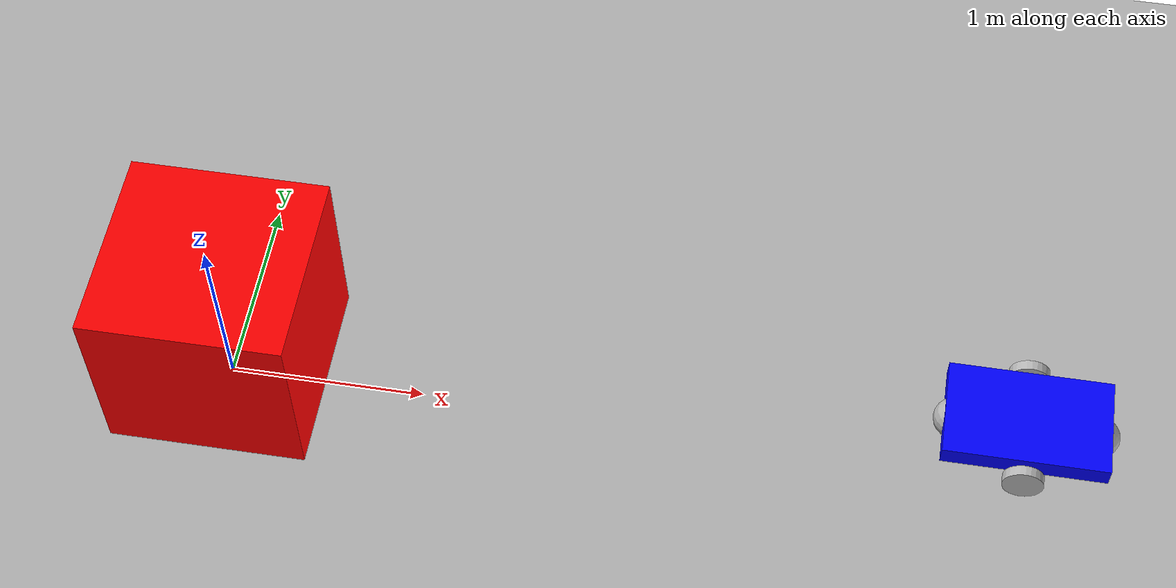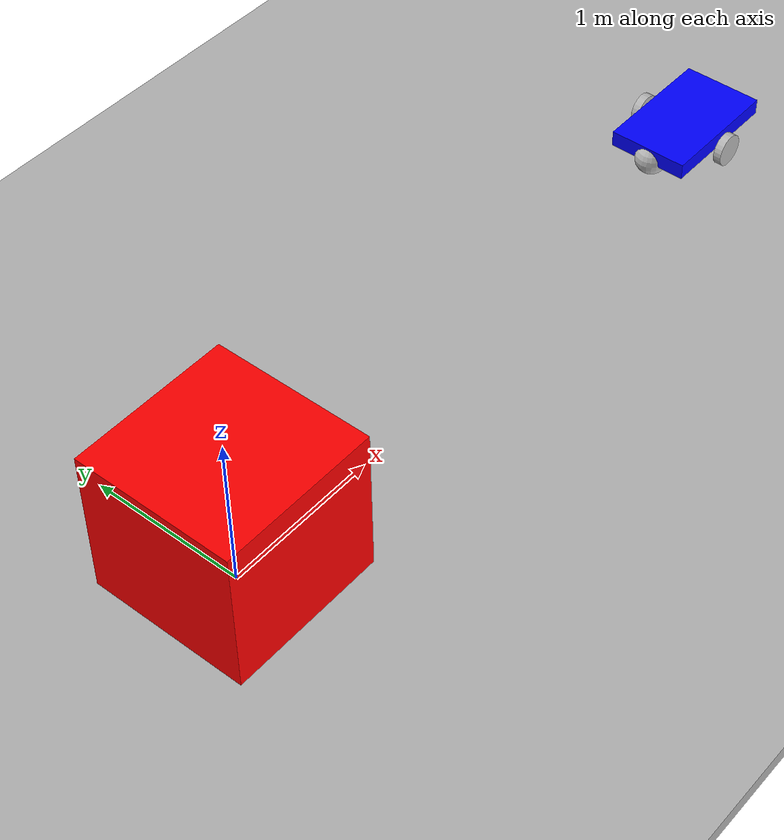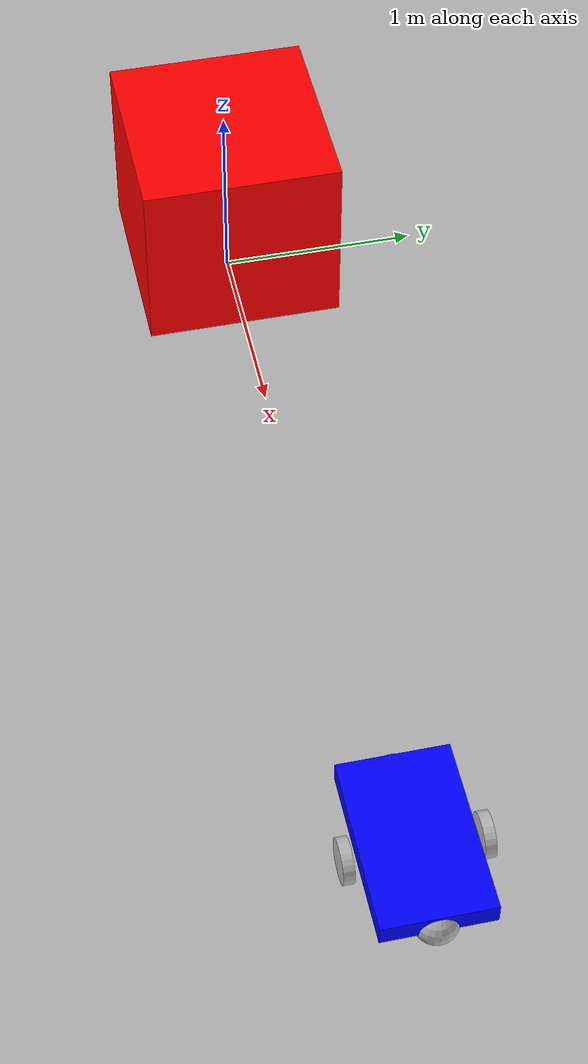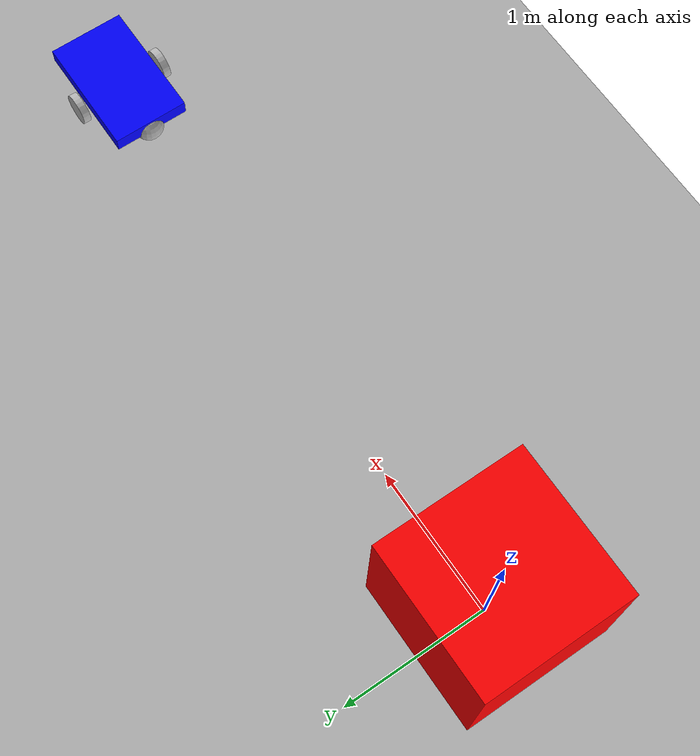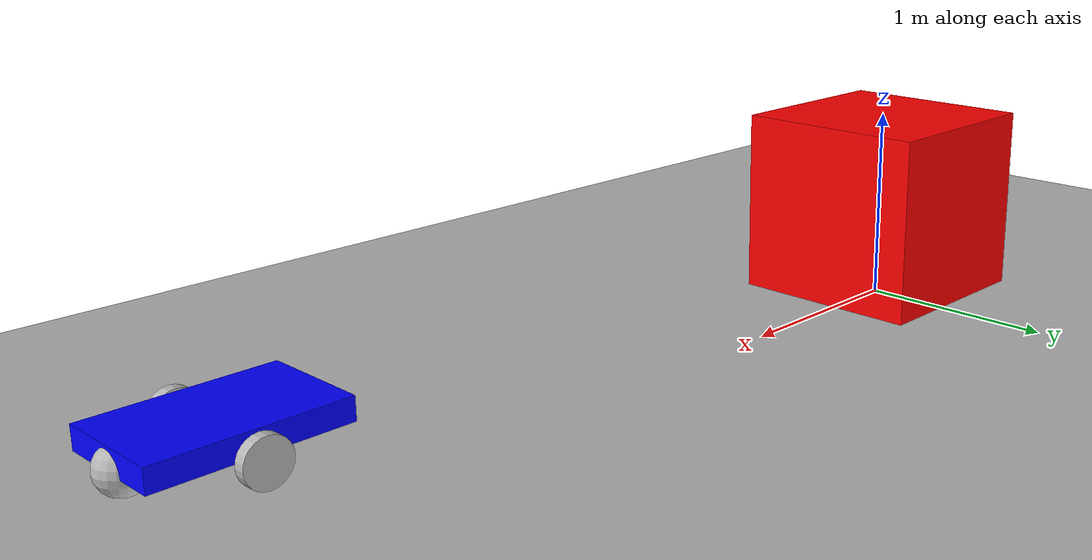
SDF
<?xml version="1.0" ?>
<sdf version="1.6">
  <world name="robot_lidar_world">
    <physics name="1ms" type="ignored">
      <max_step_size>0.001</max_step_size>
      <real_time_factor>1.0</real_time_factor>
    </physics>
    <plugin filename="gz-sim-physics-system" name="gz::sim::systems::Physics" />
    <plugin filename="gz-sim-sensors-system" name="gz::sim::systems::Sensors">
      <render_engine>ogre2</render_engine>
    </plugin>
    <plugin filename="gz-sim-scene-broadcaster-system" name="gz::sim::systems::SceneBroadcaster" />
    <plugin filename="gz-sim-user-commands-system" name="gz::sim::systems::UserCommands" />

    <light type="directional" name="sun">
      <cast_shadows>true</cast_shadows>
      <pose>0 0 10 0 0 0</pose>
      <direction>-0.5 0.1 -0.9</direction>
    </light>

    <model name="ground_plane">
      <static>true</static>
      <link name="link">
        <collision name="collision"><geometry><box><size>20 20 0.1</size></box></geometry></collision>
        <visual name="visual">
          <geometry><box><size>20 20 0.1</size></box></geometry>
          <material>
            <ambient>0.7 0.7 0.7 1</ambient>
            <diffuse>0.7 0.7 0.7 1</diffuse>
            <specular>0.1 0.1 0.1 1</specular>
          </material>
        </visual>
      </link>
    </model>

<model name="model_with_lidar">
      <pose>4 0 0.5 0 0 3.14</pose>

      <link name="base_link">
        <inertial>
          <mass>20.0</mass> <inertia>
            <ixx>0.433</ixx>
            <iyy>1.083</iyy>
            <izz>1.483</izz>
          </inertia>
        </inertial>
        <visual name="visual">
          <geometry><box><size>0.8 0.5 0.1</size></box></geometry>
          <material><ambient>0 0 1 1</ambient><diffuse>0 0 1 1</diffuse></material>
        </visual>
        <collision name="collision">
          <geometry><box><size>0.8 0.5 0.1</size></box></geometry>
        </collision>

        <visual name="caster_front_visual">
          <pose>0.35 0 -0.05 0 0 0</pose>
          <geometry><sphere><radius>0.1</radius></sphere></geometry>
        </visual>
        <collision name="caster_front_collision">
          <pose>0.35 0 -0.05 0 0 0</pose>
          <geometry><sphere><radius>0.1</radius></sphere></geometry>
          <surface><friction><ode><mu>0</mu><mu2>0</mu2></ode></friction></surface>
        </collision>

        <visual name="caster_back_visual">
          <pose>-0.35 0 -0.05 0 0 0</pose>
          <geometry><sphere><radius>0.1</radius></sphere></geometry>
        </visual>
        <collision name="caster_back_collision">
          <pose>-0.35 0 -0.05 0 0 0</pose>
          <geometry><sphere><radius>0.1</radius></sphere></geometry>
          <surface><friction><ode><mu>0</mu><mu2>0</mu2></ode></friction></surface>
        </collision>
      </link>

      <link name="left_wheel">
        <pose>0 0.3 -0.05 1.5707 0 0</pose>
        <inertial>
          <mass>1.0</mass>
          <inertia><ixx>0.003</ixx><iyy>0.003</iyy><izz>0.005</izz></inertia>
        </inertial>
        <visual name="visual"><geometry><cylinder><radius>0.1</radius><length>0.05</length></cylinder></geometry></visual>
        <collision name="collision">
          <geometry><cylinder><radius>0.1</radius><length>0.05</length></cylinder></geometry>
          <surface><friction><ode><mu>1.0</mu><mu2>1.0</mu2></ode></friction></surface>
        </collision>
      </link>

      <link name="right_wheel">
        <pose>0 -0.3 -0.05 1.5707 0 0</pose>
        <inertial>
          <mass>1.0</mass>
          <inertia><ixx>0.003</ixx><iyy>0.003</iyy><izz>0.005</izz></inertia>
        </inertial>
        <visual name="visual"><geometry><cylinder><radius>0.1</radius><length>0.05</length></cylinder></geometry></visual>
        <collision name="collision">
          <geometry><cylinder><radius>0.1</radius><length>0.05</length></cylinder></geometry>
          <surface><friction><ode><mu>1.0</mu><mu2>1.0</mu2></ode></friction></surface>
        </collision>
      </link>

      <joint name="left_wheel_joint" type="revolute">
        <parent>base_link</parent>
        <child>left_wheel</child>
        <axis><xyz>0 0 1</xyz></axis>
      </joint>
      <joint name="right_wheel_joint" type="revolute">
        <parent>base_link</parent>
        <child>right_wheel</child>
        <axis><xyz>0 0 1</xyz></axis>
      </joint>

      <link name="lidar_link">
        <pose>0.3 0 0.1 0 0 0</pose> <sensor name='gpu_lidar' type='gpu_lidar'>
          <topic>lidar</topic>
          <update_rate>3</update_rate>
          <lidar>
            <scan><horizontal><samples>640</samples><min_angle>-3.14</min_angle><max_angle>3.14</max_angle></horizontal></scan>
            <range><min>0.08</min><max>10.0</max></range>
            <noise>
              <type>gaussian</type>
              <mean>0.0</mean>
              <stddev>0.05</stddev>
            </noise>
          </lidar>
          <visualize>true</visualize>
        </sensor>
      </link>
      <joint name="lidar_joint" type="fixed">
        <parent>base_link</parent>
        <child>lidar_link</child>
      </joint>

      <static>false</static>

      <plugin filename="gz-sim-diff-drive-system" name="gz::sim::systems::DiffDrive">
        <left_joint>left_wheel_joint</left_joint>
        <right_joint>right_wheel_joint</right_joint>
        <wheel_separation>0.6</wheel_separation> <wheel_radius>0.1</wheel_radius>
        <topic>/model/model_with_lidar/cmd_vel</topic>
      </plugin>
    </model>

    <model name="box">
      <pose>0 0 0.5 0 0 0</pose>
      <link name="link">
        <inertial>
          <mass>100.0</mass>
          <inertia>
            <ixx>16.67</ixx><iyy>16.67</iyy><izz>16.67</izz>
          </inertia>
        </inertial>
        <collision name="c">
          <geometry><box><size>1 1 1</size></box></geometry>
          <surface>
            <friction>
              <ode>
                <mu>100.0</mu>
                <mu2>100.0</mu2>
              </ode>
            </friction>
          </surface>
        </collision>
        <visual name="v"><geometry><box><size>1 1 1</size></box></geometry><material><ambient>1 0 0 1</ambient></material></visual>
      </link>
    </model>
  </world>
</sdf>
